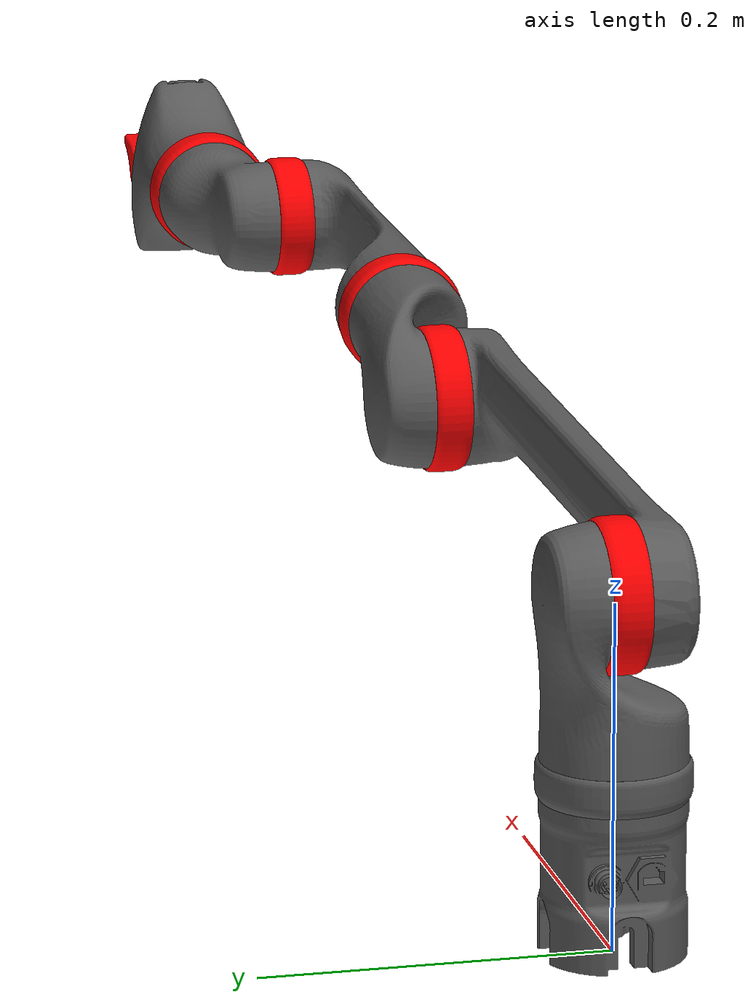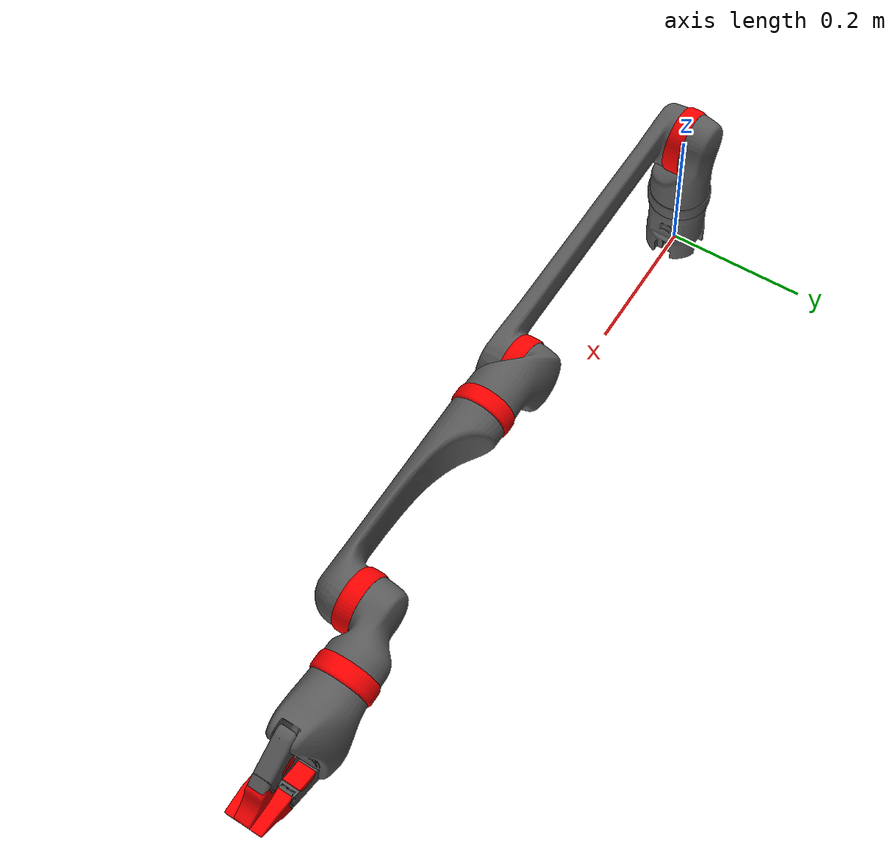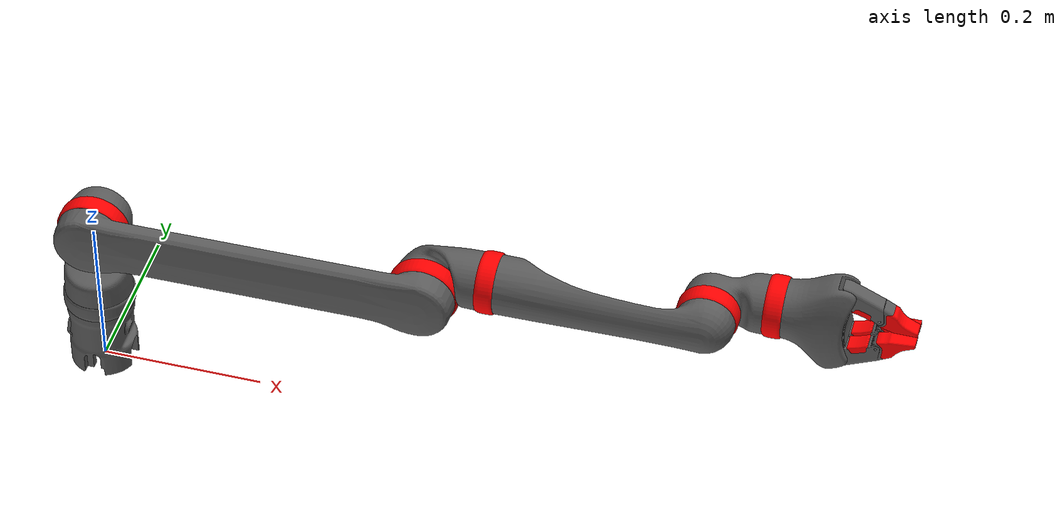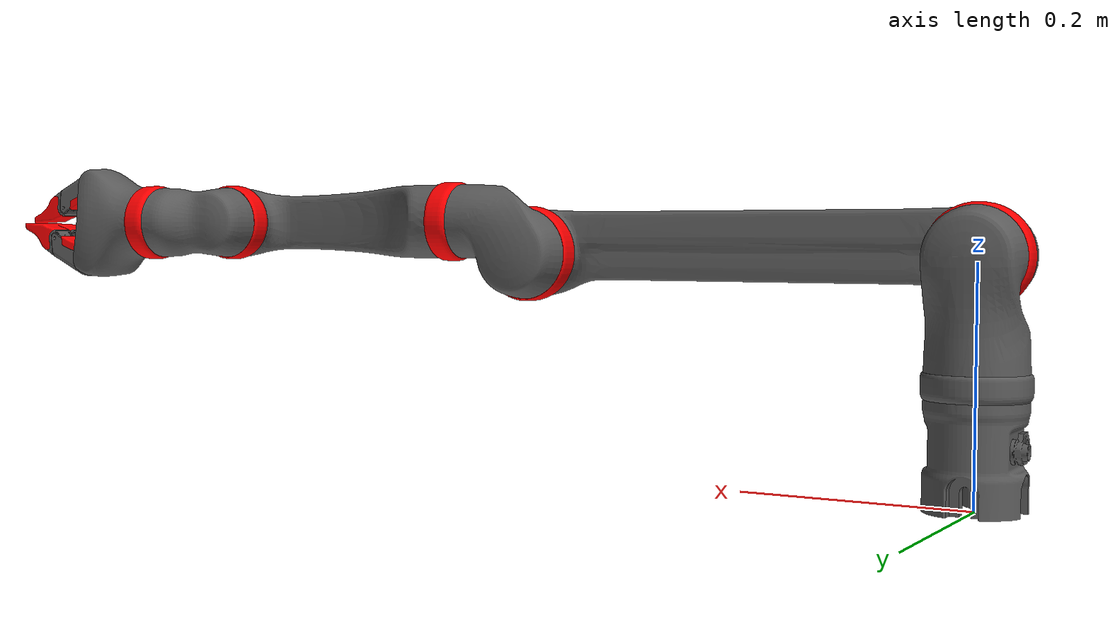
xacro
<?xml version="1.0"?>

<robot xmlns:xacro="http://www.ros.org/wiki/xacro" name="aria_v2_arm">

  <xacro:include filename="$(find aria_description)/urdf/common.gazebo.xacro" />
  <xacro:include filename="$(find aria_description)/urdf/aria_v2.urdf" />
  <xacro:include filename="$(find aria_description)/urdf/aria_v2_transmission.xacro" />

  <xacro:aria_v2_transmission />

  <!-- Mimic joints - gripper fingers 2,3 -->
  <gazebo>
    <plugin name="finger_2_mimic_joint_plugin" filename="libroboticsgroup_gazebo_mimic_joint_plugin.so">
      <joint>Joint_7</joint>
      <mimicJoint>Joint_8</mimicJoint>
    </plugin>
  </gazebo>

  <link name="world" />
  <joint name="world_joint" type="fixed">
    <parent link="world" />
    <child link="Link_0" />
    <origin xyz="0 0 0" rpy="0 0 0" />
  </joint>

</robot>

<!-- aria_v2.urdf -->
<robot
  name="aria_v2_arm">
  <link
    name="Link_0">
    <inertial>
      <origin
        xyz="-0.00031838 -0.00019031 0.077814"
        rpy="0 0 0" />
      <mass
        value="0.53145" />
      <inertia
        ixx="0.00031415"
        ixy="1.239E-07"
        ixz="-2.2361E-07"
        iyy="0.00030268"
        iyz="-5.7666E-08"
        izz="0.00038515" />
    </inertial>
    <visual>
      <origin
        xyz="0 0 0"
        rpy="0 0 0" />
      <geometry>
        <mesh
          filename="package://aria_description/meshes/aria_v2/Link_0.STL" />
      </geometry>
      <material
        name="">
        <color
          rgba="0.36 0.36 0.36 1" />
      </material>
    </visual>
    <collision>
      <origin
        xyz="0 0 0"
        rpy="0 0 0" />
      <geometry>
        <mesh
          filename="package://aria_description/meshes/aria_v2/Link_0.STL" />
      </geometry>
    </collision>
  </link>
  <link
    name="Link_1">
    <inertial>
      <origin
        xyz="3.2943E-06 -0.0015448 0.050095"
        rpy="0 0 0" />
      <mass
        value="0.69534" />
      <inertia
        ixx="0.00049268"
        ixy="-4.9989E-08"
        ixz="-1.3306E-08"
        iyy="0.00061098"
        iyz="-5.5347E-05"
        izz="0.00050738" />
    </inertial>
    <visual>
      <origin
        xyz="0 0 0"
        rpy="0 0 0" />
      <geometry>
        <mesh
          filename="package://aria_description/meshes/aria_v2/Link_1.STL" />
      </geometry>
      <material
        name="">
        <color
          rgba="0.36 0.36 0.36 1" />
      </material>
    </visual>
    <collision>
      <origin
        xyz="0 0 0"
        rpy="0 0 0" />
      <geometry>
        <mesh
          filename="package://aria_description/meshes/aria_v2/Link_1.STL" />
      </geometry>
    </collision>
  </link>
  <joint
    name="Joint_1"
    type="continuous">
    <origin
      xyz="0 0 0.10125"
      rpy="0 0 0" />
    <parent
      link="Link_0" />
    <child
      link="Link_1" />
    <axis
      xyz="0 0 1" />
    <limit
      lower="0"
      upper="0"
      effort="0"
      velocity="0.7" />
  </joint>
  <link
    name="Link_2">
    <inertial>
      <origin
        xyz="0.20499 -0.0058756 0.0013327"
        rpy="0 0 0" />
      <mass
        value="1.1208" />
      <inertia
        ixx="0.00038399"
        ixy="4.5607E-08"
        ixz="-2.1327E-07"
        iyy="0.0054244"
        iyz="-9.7184E-06"
        izz="0.0051239" />
    </inertial>
    <visual>
      <origin
        xyz="0 0 0"
        rpy="0 0 0" />
      <geometry>
        <mesh
          filename="package://aria_description/meshes/aria_v2/Link_2.STL" />
      </geometry>
      <material
        name="">
        <color
          rgba="0.36 0.36 0.36 1" />
      </material>
    </visual>
    <collision>
      <origin
        xyz="0 0 0"
        rpy="0 0 0" />
      <geometry>
        <mesh
          filename="package://aria_description/meshes/aria_v2/Link_2.STL" />
      </geometry>
    </collision>
  </link>
  <joint
    name="Joint_2"
    type="revolute">
    <origin
      xyz="0 0.00025 0.10375"
      rpy="0 0 0" />
    <parent
      link="Link_1" />
    <child
      link="Link_2" />
    <axis
      xyz="0 -1 0" />
    <limit
      lower="-0.97"
      upper="3.615"
      effort="0"
      velocity="0.7" />
  </joint>
  <link
    name="Link_3">
    <inertial>
      <origin
        xyz="0.031996 -0.0005568 0.014244"
        rpy="0 0 0" />
      <mass
        value="0.59885" />
      <inertia
        ixx="0.00032177"
        ixy="2.246E-05"
        ixz="-2.6964E-05"
        iyy="0.00042148"
        iyz="1.3686E-05"
        izz="0.00028257" />
    </inertial>
    <visual>
      <origin
        xyz="0 0 0"
        rpy="0 0 0" />
      <geometry>
        <mesh
          filename="package://aria_description/meshes/aria_v2/Link_3.STL" />
      </geometry>
      <material
        name="">
        <color
          rgba="0.36 0.36 0.36 1" />
      </material>
    </visual>
    <collision>
      <origin
        xyz="0 0 0"
        rpy="0 0 0" />
      <geometry>
        <mesh
          filename="package://aria_description/meshes/aria_v2/Link_3.STL" />
      </geometry>
    </collision>
  </link>
  <joint
    name="Joint_3"
    type="revolute">
    <origin
      xyz="0.41 0 0"
      rpy="0 0 0" />
    <parent
      link="Link_2" />
    <child
      link="Link_3" />
    <axis
      xyz="0 -1 0" />
    <limit
      lower="-3.143"
      upper="1.689"
      effort="0"
      velocity="0.7" />
  </joint>
  <link
    name="Link_4">
    <inertial>
      <origin
        xyz="0.13192 0.00044054 -4.1433E-06"
        rpy="0 0 0" />
      <mass
        value="0.57097" />
      <inertia
        ixx="0.00022841"
        ixy="4.0675E-05"
        ixz="6.7594E-08"
        iyy="0.0008971"
        iyz="-1.1013E-07"
        izz="0.00084032" />
    </inertial>
    <visual>
      <origin
        xyz="0 0 0"
        rpy="0 0 0" />
      <geometry>
        <mesh
          filename="package://aria_description/meshes/aria_v2/Link_4.STL" />
      </geometry>
      <material
        name="">
        <color
          rgba="0.36 0.36 0.36 1" />
      </material>
    </visual>
    <collision>
      <origin
        xyz="0 0 0"
        rpy="0 0 0" />
      <geometry>
        <mesh
          filename="package://aria_description/meshes/aria_v2/Link_4.STL" />
      </geometry>
    </collision>
  </link>
  <joint
    name="Joint_4"
    type="continuous">
    <origin
      xyz="0.07925 0.00475 0.03"
      rpy="0 0 0" />
    <parent
      link="Link_3" />
    <child
      link="Link_4" />
    <axis
      xyz="1 0 0" />
    <limit
      lower="0"
      upper="0"
      effort="0"
      velocity="1.1" />
  </joint>
  <link
    name="Link_5">
    <inertial>
      <origin
        xyz="0.03284 0.021299 -2.8697E-05"
        rpy="0 0 0" />
      <mass
        value="0.49438" />
      <inertia
        ixx="0.00018126"
        ixy="-2.3246E-06"
        ixz="-3.4961E-08"
        iyy="0.00020195"
        iyz="2.7897E-08"
        izz="0.0001487" />
    </inertial>
    <visual>
      <origin
        xyz="0 0 0"
        rpy="0 0 0" />
      <geometry>
        <mesh
          filename="package://aria_description/meshes/aria_v2/Link_5.STL" />
      </geometry>
      <material
        name="">
        <color
          rgba="0.36 0.36 0.36 1" />
      </material>
    </visual>
    <collision>
      <origin
        xyz="0 0 0"
        rpy="0 0 0" />
      <geometry>
        <mesh
          filename="package://aria_description/meshes/aria_v2/Link_5.STL" />
      </geometry>
    </collision>
  </link>
  <joint
    name="Joint_5"
    type="revolute">
    <origin
      xyz="0.25625 0.01475 0"
      rpy="0 0 0" />
    <parent
      link="Link_4" />
    <child
      link="Link_5" />
    <axis
      xyz="0 -1 0" />
    <limit
      lower="-3.14"
      upper="3.14"
      effort="0"
      velocity="1.1" />
  </joint>
  <link
    name="Link_6">
    <inertial>
      <origin
        xyz="0.034727 -0.0013989 0.00034899"
        rpy="0 0 0" />
      <mass
        value="0.59072" />
      <inertia
        ixx="0.00029283"
        ixy="-5.371E-07"
        ixz="-1.7919E-06"
        iyy="0.00024695"
        iyz="-1.3334E-06"
        izz="0.0001618" />
    </inertial>
    <visual>
      <origin
        xyz="0 0 0"
        rpy="0 0 0" />
      <geometry>
        <mesh
          filename="package://aria_description/meshes/aria_v2/Link_6.STL" />
      </geometry>
      <material
        name="">
        <color
          rgba="0.36 0.36 0.36 1" />
      </material>
    </visual>
    <collision>
      <origin
        xyz="0 0 0"
        rpy="0 0 0" />
      <geometry>
        <mesh
          filename="package://aria_description/meshes/aria_v2/Link_6.STL" />
      </geometry>
    </collision>
  </link>
  <joint
    name="Joint_6"
    type="continuous">
    <origin
      xyz="0.07375 0.03475 0"
      rpy="0 0 0" />
    <parent
      link="Link_5" />
    <child
      link="Link_6" />
    <axis
      xyz="1 0 0" />
    <limit
      lower="0"
      upper="0"
      effort="0"
      velocity="1.1" />
  </joint>
  <link
    name="Link_7_Upper_finger">
    <inertial>
      <origin
        xyz="0.020312 -1.2696E-08 0.0029028"
        rpy="0 0 0" />
      <mass
        value="0.011133" />
      <inertia
        ixx="1.7757E-06"
        ixy="1.3244E-12"
        ixz="5.4801E-07"
        iyy="3.1925E-06"
        iyz="1.3454E-12"
        izz="2.8343E-06" />
    </inertial>
    <visual>
      <origin
        xyz="0 0 0"
        rpy="0 0 0" />
      <geometry>
        <mesh
          filename="package://aria_description/meshes/aria_v2/Link_7_Upper_finger.STL" />
      </geometry>
      <material
        name="">
        <color
          rgba="0.36 0.36 0.36 1" />
      </material>
    </visual>
    <collision>
      <origin
        xyz="0 0 0"
        rpy="0 0 0" />
      <geometry>
        <mesh
          filename="package://aria_description/meshes/aria_v2/Link_7_Upper_finger.STL" />
      </geometry>
    </collision>
  </link>
  <joint
    name="Joint_7"
    type="revolute">
    <origin
      xyz="0.077886 0 0.030275"
      rpy="0 0 0" />
    <parent
      link="Link_6" />
    <child
      link="Link_7_Upper_finger" />
    <axis
      xyz="0 -1 0" />
    <limit
      lower="0"
      upper="1.05"
      effort="0"
      velocity="0.4" />
  </joint>
  <link
    name="Link_7_1">
    <inertial>
      <origin
        xyz="0.022637 -5.5751E-09 -0.0098448"
        rpy="0 0 0" />
      <mass
        value="0.0019953" />
      <inertia
        ixx="1.2286E-07"
        ixy="3.8181E-14"
        ixz="2.631E-08"
        iyy="9.9136E-08"
        iyz="4.8996E-14"
        izz="1.8781E-07" />
    </inertial>
    <visual>
      <origin
        xyz="0 0 0"
        rpy="0 0 0" />
      <geometry>
        <mesh
          filename="package://aria_description/meshes/aria_v2/Link_7_1.STL" />
      </geometry>
      <material
        name="">
        <color
          rgba="1 0 0 1" />
      </material>
    </visual>
    <collision>
      <origin
        xyz="0 0 0"
        rpy="0 0 0" />
      <geometry>
        <mesh
          filename="package://aria_description/meshes/aria_v2/Link_7_1.STL" />
      </geometry>
    </collision>
  </link>
  <joint
    name="Joint_7_1"
    type="fixed">
    <origin
      xyz="0 0 0"
      rpy="0 0 0" />
    <parent
      link="Link_7_Upper_finger" />
    <child
      link="Link_7_1" />
    <axis
      xyz="0 0 0" />
  </joint>
  <link
    name="Link_7_2">
    <inertial>
      <origin
        xyz="0.051253 -1.2408E-07 -0.011937"
        rpy="0 0 0" />
      <mass
        value="0.0065409" />
      <inertia
        ixx="5.638E-07"
        ixy="1.4659E-12"
        ixz="2.5823E-07"
        iyy="1.0596E-06"
        iyz="8.808E-12"
        izz="8.2792E-07" />
    </inertial>
    <visual>
      <origin
        xyz="0 0 0"
        rpy="0 0 0" />
      <geometry>
        <mesh
          filename="package://aria_description/meshes/aria_v2/Link_7_2.STL" />
      </geometry>
      <material
        name="">
        <color
          rgba="0.36 0.36 0.36 1" />
      </material>
    </visual>
    <collision>
      <origin
        xyz="0 0 0"
        rpy="0 0 0" />
      <geometry>
        <mesh
          filename="package://aria_description/meshes/aria_v2/Link_7_2.STL" />
      </geometry>
    </collision>
  </link>
  <joint
    name="Link_7_2"
    type="fixed">
    <origin
      xyz="0 0 0"
      rpy="0 0 0" />
    <parent
      link="Link_7_Upper_finger" />
    <child
      link="Link_7_2" />
    <axis
      xyz="0 0 0" />
  </joint>
  <link
    name="Link_7_3">
    <inertial>
      <origin
        xyz="0.063618 1.157E-07 -0.018315"
        rpy="0 0 0" />
      <mass
        value="0.01159" />
      <inertia
        ixx="1.1886E-06"
        ixy="9.1474E-12"
        ixz="4.77E-07"
        iyy="1.9927E-06"
        iyz="-2.4017E-11"
        izz="1.7377E-06" />
    </inertial>
    <visual>
      <origin
        xyz="0 0 0"
        rpy="0 0 0" />
      <geometry>
        <mesh
          filename="package://aria_description/meshes/aria_v2/Link_7_3.STL" />
      </geometry>
      <material
        name="">
        <color
          rgba="1 0 0 1" />
      </material>
    </visual>
    <collision>
      <origin
        xyz="0 0 0"
        rpy="0 0 0" />
      <geometry>
        <mesh
          filename="package://aria_description/meshes/aria_v2/Link_7_3.STL" />
      </geometry>
    </collision>
  </link>
  <joint
    name="Link_7_3"
    type="fixed">
    <origin
      xyz="0 0 0"
      rpy="0 0 0" />
    <parent
      link="Link_7_Upper_finger" />
    <child
      link="Link_7_3" />
    <axis
      xyz="0 0 0" />
  </joint>
  <link
    name="Link_8_Lower_fingers">
    <inertial>
      <origin
        xyz="0.018988 1.2696E-08 0.017972"
        rpy="0 0 0" />
      <mass
        value="0.022266" />
      <inertia
        ixx="3.5514E-06"
        ixy="-2.6486E-12"
        ixz="-1.096E-06"
        iyy="6.385E-06"
        iyz="2.6911E-12"
        izz="5.6685E-06" />
    </inertial>
    <visual>
      <origin
        xyz="0 0 0"
        rpy="0 0 0" />
      <geometry>
        <mesh
          filename="package://aria_description/meshes/aria_v2/Link_8_Lower_fingers.STL" />
      </geometry>
      <material
        name="">
        <color
          rgba="0.36 0.36 0.36 1" />
      </material>
    </visual>
    <collision>
      <origin
        xyz="0 0 0"
        rpy="0 0 0" />
      <geometry>
        <mesh
          filename="package://aria_description/meshes/aria_v2/Link_8_Lower_fingers.STL" />
      </geometry>
    </collision>
  </link>
  <joint
    name="Joint_8"
    type="revolute">
    <origin
      xyz="0.07921 0 -0.051151"
      rpy="0 0 0" />
    <parent
      link="Link_6" />
    <child
      link="Link_8_Lower_fingers" />
    <axis
      xyz="0 1 0" />
    <limit
      lower="0"
      upper="1.05"
      effort="0"
      velocity="0.4" />
    <mimic joint="Joint_7" multiplier="1" offset="0"/>
  </joint>
  <link
    name="Link_8_1">
    <inertial>
      <origin
        xyz="0.021313 5.5751E-09 0.03072"
        rpy="0 0 0" />
      <mass
        value="0.0039905" />
      <inertia
        ixx="2.4573E-07"
        ixy="-7.6363E-14"
        ixz="-5.2619E-08"
        iyy="1.9827E-07"
        iyz="9.7992E-14"
        izz="3.7561E-07" />
    </inertial>
    <visual>
      <origin
        xyz="0 0 0"
        rpy="0 0 0" />
      <geometry>
        <mesh
          filename="package://aria_description/meshes/aria_v2/Link_8_1.STL" />
      </geometry>
      <material
        name="">
        <color
          rgba="1 0 0 1" />
      </material>
    </visual>
    <collision>
      <origin
        xyz="0 0 0"
        rpy="0 0 0" />
      <geometry>
        <mesh
          filename="package://aria_description/meshes/aria_v2/Link_8_1.STL" />
      </geometry>
    </collision>
  </link>
  <joint
    name="Joint_8_1"
    type="fixed">
    <origin
      xyz="0 0 0"
      rpy="0 0 0" />
    <parent
      link="Link_8_Lower_fingers" />
    <child
      link="Link_8_1" />
    <axis
      xyz="0 0 0" />
  </joint>
  <link
    name="Link_8_2">
    <inertial>
      <origin
        xyz="0.049929 1.2408E-07 0.032813"
        rpy="0 0 0" />
      <mass
        value="0.013082" />
      <inertia
        ixx="1.1276E-06"
        ixy="-2.9319E-12"
        ixz="-5.1647E-07"
        iyy="2.1192E-06"
        iyz="1.7616E-11"
        izz="1.6558E-06" />
    </inertial>
    <visual>
      <origin
        xyz="0 0 0"
        rpy="0 0 0" />
      <geometry>
        <mesh
          filename="package://aria_description/meshes/aria_v2/Link_8_2.STL" />
      </geometry>
      <material
        name="">
        <color
          rgba="0.36 0.36 0.36 1" />
      </material>
    </visual>
    <collision>
      <origin
        xyz="0 0 0"
        rpy="0 0 0" />
      <geometry>
        <mesh
          filename="package://aria_description/meshes/aria_v2/Link_8_2.STL" />
      </geometry>
    </collision>
  </link>
  <joint
    name="Joint_8_2"
    type="fixed">
    <origin
      xyz="0 0 0"
      rpy="0 0 0" />
    <parent
      link="Link_8_Lower_fingers" />
    <child
      link="Link_8_2" />
    <axis
      xyz="0 0 0" />
  </joint>
  <link
    name="Link_8_3">
    <inertial>
      <origin
        xyz="0.062294 -1.1572E-07 0.03919"
        rpy="0 0 0" />
      <mass
        value="0.023181" />
      <inertia
        ixx="2.3772E-06"
        ixy="-1.8284E-11"
        ixz="-9.5401E-07"
        iyy="3.9854E-06"
        iyz="-4.8012E-11"
        izz="3.4754E-06" />
    </inertial>
    <visual>
      <origin
        xyz="0 0 0"
        rpy="0 0 0" />
      <geometry>
        <mesh
          filename="package://aria_description/meshes/aria_v2/Link_8_3.STL" />
      </geometry>
      <material
        name="">
        <color
          rgba="1 0 0 1" />
      </material>
    </visual>
    <collision>
      <origin
        xyz="0 0 0"
        rpy="0 0 0" />
      <geometry>
        <mesh
          filename="package://aria_description/meshes/aria_v2/Link_8_3.STL" />
      </geometry>
    </collision>
  </link>
  <joint
    name="Joint_8_3"
    type="fixed">
    <origin
      xyz="0 0 0"
      rpy="0 0 0" />
    <parent
      link="Link_8_Lower_fingers" />
    <child
      link="Link_8_3" />
    <axis
      xyz="0 0 0" />
  </joint>
  <link
    name="Band_6">
    <inertial>
      <origin
        xyz="0.073315 0.03475 2.6609E-08"
        rpy="0 0 0" />
      <mass
        value="0.012065" />
      <inertia
        ixx="1.5606E-05"
        ixy="-6.5221E-12"
        ixz="1.756E-12"
        iyy="8.1805E-06"
        iyz="8.8122E-12"
        izz="8.1805E-06" />
    </inertial>
    <visual>
      <origin
        xyz="0 0 0"
        rpy="0 0 0" />
      <geometry>
        <mesh
          filename="package://aria_description/meshes/aria_v2/Band_6.STL" />
      </geometry>
      <material
        name="">
        <color
          rgba="1 0 0 1" />
      </material>
    </visual>
    <collision>
      <origin
        xyz="0 0 0"
        rpy="0 0 0" />
      <geometry>
        <mesh
          filename="package://aria_description/meshes/aria_v2/Band_6.STL" />
      </geometry>
    </collision>
  </link>
  <joint
    name="Band_joint_6"
    type="fixed">
    <origin
      xyz="0 0 0"
      rpy="0 0 0" />
    <parent
      link="Link_5" />
    <child
      link="Band_6" />
    <axis
      xyz="0 0 0" />
  </joint>
  <link
    name="Band_5">
    <inertial>
      <origin
        xyz="0.25625 0.014315 2.6609E-08"
        rpy="0 0 0" />
      <mass
        value="0.012065" />
      <inertia
        ixx="8.1805E-06"
        ixy="6.5221E-12"
        ixz="-8.8122E-12"
        iyy="1.5606E-05"
        iyz="1.756E-12"
        izz="8.1805E-06" />
    </inertial>
    <visual>
      <origin
        xyz="0 0 0"
        rpy="0 0 0" />
      <geometry>
        <mesh
          filename="package://aria_description/meshes/aria_v2/Band_5.STL" />
      </geometry>
      <material
        name="">
        <color
          rgba="1 0 0 1" />
      </material>
    </visual>
    <collision>
      <origin
        xyz="0 0 0"
        rpy="0 0 0" />
      <geometry>
        <mesh
          filename="package://aria_description/meshes/aria_v2/Band_5.STL" />
      </geometry>
    </collision>
  </link>
  <joint
    name="Band_joint_5"
    type="fixed">
    <origin
      xyz="0 0 0"
      rpy="0 0 0" />
    <parent
      link="Link_4" />
    <child
      link="Band_5" />
    <axis
      xyz="0 0 0" />
  </joint>
  <link
    name="Band_4">
    <inertial>
      <origin
        xyz="0.078815 0.0047501 0.03"
        rpy="0 0 0" />
      <mass
        value="0.012065" />
      <inertia
        ixx="1.5606E-05"
        ixy="-6.5221E-12"
        ixz="1.756E-12"
        iyy="8.1805E-06"
        iyz="8.8122E-12"
        izz="8.1805E-06" />
    </inertial>
    <visual>
      <origin
        xyz="0 0 0"
        rpy="0 0 0" />
      <geometry>
        <mesh
          filename="package://aria_description/meshes/aria_v2/Band_4.STL" />
      </geometry>
      <material
        name="">
        <color
          rgba="1 0 0 1" />
      </material>
    </visual>
    <collision>
      <origin
        xyz="0 0 0"
        rpy="0 0 0" />
      <geometry>
        <mesh
          filename="package://aria_description/meshes/aria_v2/Band_4.STL" />
      </geometry>
    </collision>
  </link>
  <joint
    name="Band_joint__4"
    type="fixed">
    <origin
      xyz="0 0 0"
      rpy="0 0 0" />
    <parent
      link="Link_3" />
    <child
      link="Band_4" />
    <axis
      xyz="0 0 0" />
  </joint>
  <link
    name="Band_3">
    <inertial>
      <origin
        xyz="0.41 -0.00043165 1.0889E-08"
        rpy="0 0 0" />
      <mass
        value="0.014219" />
      <inertia
        ixx="1.3271E-05"
        ixy="1.1791E-12"
        ixz="2.8009E-12"
        iyy="2.5651E-05"
        iyz="1.5399E-12"
        izz="1.3271E-05" />
    </inertial>
    <visual>
      <origin
        xyz="0 0 0"
        rpy="0 0 0" />
      <geometry>
        <mesh
          filename="package://aria_description/meshes/aria_v2/Band_3.STL" />
      </geometry>
      <material
        name="">
        <color
          rgba="1 0 0 1" />
      </material>
    </visual>
    <collision>
      <origin
        xyz="0 0 0"
        rpy="0 0 0" />
      <geometry>
        <mesh
          filename="package://aria_description/meshes/aria_v2/Band_3.STL" />
      </geometry>
    </collision>
  </link>
  <joint
    name="Band_joint_3"
    type="fixed">
    <origin
      xyz="0 0 0"
      rpy="0 0 0" />
    <parent
      link="Link_2" />
    <child
      link="Band_3" />
    <axis
      xyz="0 0 0" />
  </joint>
  <link
    name="Band_2">
    <inertial>
      <origin
        xyz="-1.3519E-08 0.00068165 0.10375"
        rpy="0 0 0" />
      <mass
        value="0.014219" />
      <inertia
        ixx="1.3271E-05"
        ixy="1.875E-12"
        ixz="1.6136E-12"
        iyy="2.5651E-05"
        iyz="4.9952E-13"
        izz="1.3271E-05" />
    </inertial>
    <visual>
      <origin
        xyz="0 0 0"
        rpy="0 0 0" />
      <geometry>
        <mesh
          filename="package://aria_description/meshes/aria_v2/Band_2.STL" />
      </geometry>
      <material
        name="">
        <color
          rgba="1 0 0 1" />
      </material>
    </visual>
    <collision>
      <origin
        xyz="0 0 0"
        rpy="0 0 0" />
      <geometry>
        <mesh
          filename="package://aria_description/meshes/aria_v2/Band_2.STL" />
      </geometry>
    </collision>
  </link>
  <joint
    name="Band_joint_2"
    type="fixed">
    <origin
      xyz="0 0 0"
      rpy="0 0 0" />
    <parent
      link="Link_1" />
    <child
      link="Band_2" />
    <axis
      xyz="0 0 0" />
  </joint>
  <link
    name="Band_1">
    <inertial>
      <origin
        xyz="-0.00031838 -0.00019031 0.077814"
        rpy="0 0 0" />
      <mass
        value="0.53145" />
      <inertia
        ixx="0.00031415"
        ixy="1.239E-07"
        ixz="-2.2361E-07"
        iyy="0.00030268"
        iyz="-5.7666E-08"
        izz="0.00038515" />
    </inertial>
    <visual>
      <origin
        xyz="0 0 0"
        rpy="0 0 0" />
      <geometry>
        <mesh
          filename="package://aria_description/meshes/aria_v2/Band_1.STL" />
      </geometry>
      <material
        name="">
        <color
          rgba="0.36 0.36 0.36 1" />
      </material>
    </visual>
    <collision>
      <origin
        xyz="0 0 0"
        rpy="0 0 0" />
      <geometry>
        <mesh
          filename="package://aria_description/meshes/aria_v2/Band_1.STL" />
      </geometry>
    </collision>
  </link>
  <joint
    name="Band_joint_1"
    type="fixed">
    <origin
      xyz="0 0 0"
      rpy="0 0 0" />
    <parent
      link="Link_0" />
    <child
      link="Band_1" />
    <axis
      xyz="0 0 0" />
  </joint>
  <link name="eef_link" />
  <joint name="eef_joint" type="fixed">
    <parent link="Link_6" />
    <child link="eef_link" />
    <origin xyz="0.1555 0 0" rpy="3.1415 -1.5708 0" />
  </joint>
</robot>
